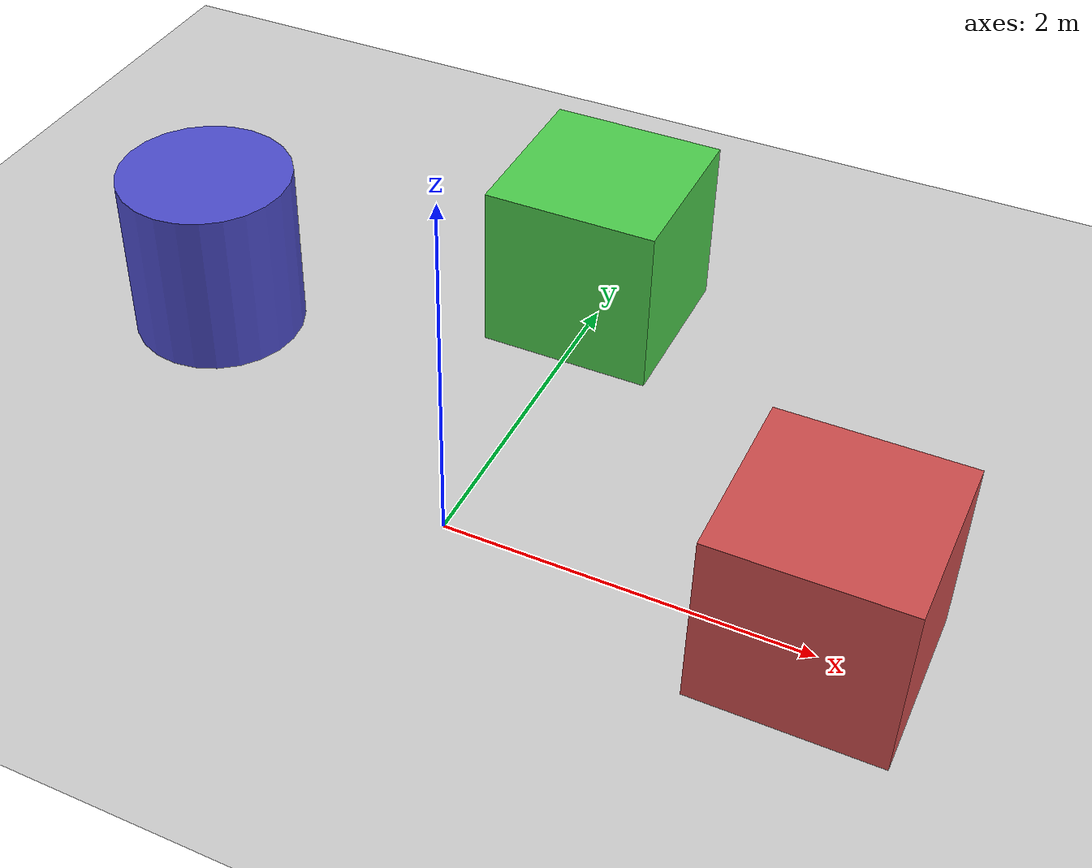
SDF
<?xml version="1.0" ?>
<sdf version="1.8">
  <world name="empty_world">

    <physics name="1ms" type="ignored">
      <max_step_size>0.001</max_step_size>
      <real_time_factor>1.0</real_time_factor>
    </physics>

    <plugin filename="gz-sim-physics-system" name="gz::sim::systems::Physics"/>
    <plugin filename="gz-sim-user-commands-system" name="gz::sim::systems::UserCommands"/>
    <plugin filename="gz-sim-scene-broadcaster-system" name="gz::sim::systems::SceneBroadcaster"/>
    <plugin filename="gz-sim-sensors-system" name="gz::sim::systems::Sensors">
      <render_engine>ogre2</render_engine>
    </plugin>

    <light type="directional" name="sun">
      <cast_shadows>true</cast_shadows>
      <pose>0 0 10 0 0 0</pose>
      <diffuse>0.8 0.8 0.8 1</diffuse>
      <specular>0.2 0.2 0.2 1</specular>
      <attenuation>
        <range>1000</range>
        <constant>0.9</constant>
        <linear>0.01</linear>
        <quadratic>0.001</quadratic>
      </attenuation>
      <direction>-0.5 0.1 -0.9</direction>
    </light>

    <model name="ground_plane">
      <static>true</static>
      <link name="link">
        <collision name="collision">
          <geometry>
            <plane>
              <normal>0 0 1</normal>
              <size>100 100</size>
            </plane>
          </geometry>
        </collision>
        <visual name="visual">
          <geometry>
            <plane>
              <normal>0 0 1</normal>
              <size>100 100</size>
            </plane>
          </geometry>
          <material>
            <ambient>0.8 0.8 0.8 1</ambient>
            <diffuse>0.8 0.8 0.8 1</diffuse>
            <specular>0.8 0.8 0.8 1</specular>
          </material>
        </visual>
      </link>
    </model>

    <!-- Add some obstacles for lidar to detect -->
    <model name="box1">
      <static>true</static>
      <pose>2 0 0.5 0 0 0</pose>
      <link name="link">
        <collision name="collision">
          <geometry>
            <box><size>1 1 1</size></box>
          </geometry>
        </collision>
        <visual name="visual">
          <geometry>
            <box><size>1 1 1</size></box>
          </geometry>
          <material>
            <ambient>0.5 0.2 0.2 1</ambient>
            <diffuse>0.8 0.3 0.3 1</diffuse>
          </material>
        </visual>
      </link>
    </model>

    <model name="box2">
      <static>true</static>
      <pose>0 2 0.5 0 0 0</pose>
      <link name="link">
        <collision name="collision">
          <geometry>
            <box><size>1 1 1</size></box>
          </geometry>
        </collision>
        <visual name="visual">
          <geometry>
            <box><size>1 1 1</size></box>
          </geometry>
          <material>
            <ambient>0.2 0.5 0.2 1</ambient>
            <diffuse>0.3 0.8 0.3 1</diffuse>
          </material>
        </visual>
      </link>
    </model>

    <model name="cylinder1">
      <static>true</static>
      <pose>-2 1 0.5 0 0 0</pose>
      <link name="link">
        <collision name="collision">
          <geometry>
            <cylinder><radius>0.5</radius><length>1</length></cylinder>
          </geometry>
        </collision>
        <visual name="visual">
          <geometry>
            <cylinder><radius>0.5</radius><length>1</length></cylinder>
          </geometry>
          <material>
            <ambient>0.2 0.2 0.5 1</ambient>
            <diffuse>0.3 0.3 0.8 1</diffuse>
          </material>
        </visual>
      </link>
    </model>

  </world>
</sdf>
